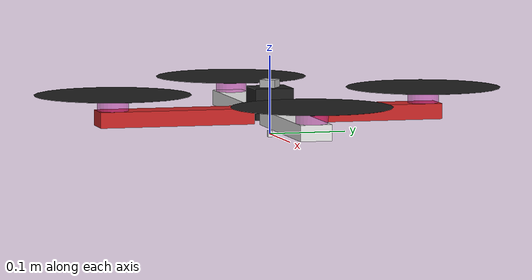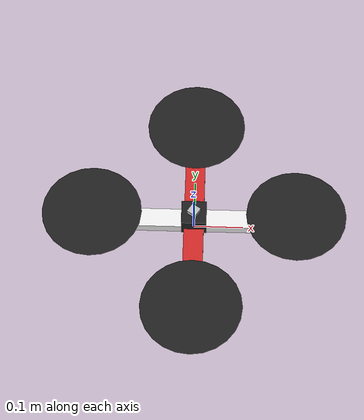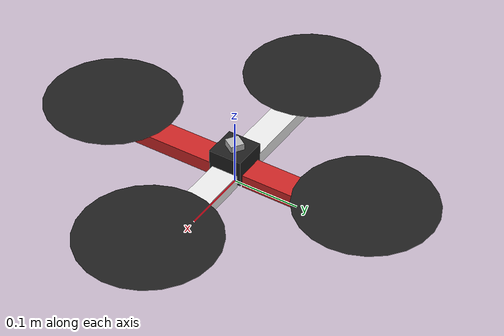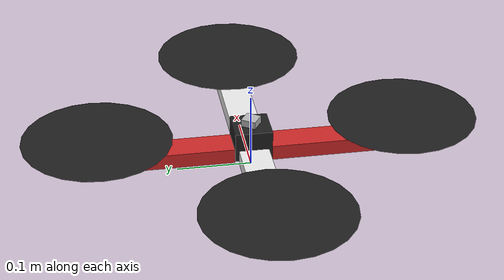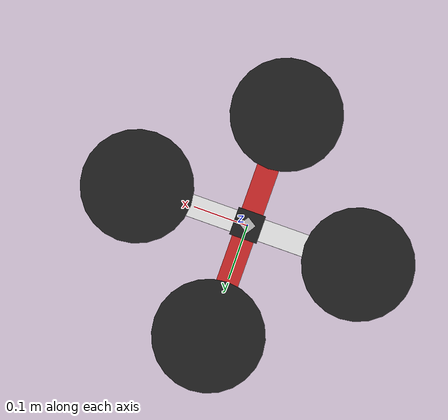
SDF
<sdf version='1.6'>
  <model name='generic_quad_sim'>
    <link name='base_link'>
      <pose frame=''>0 0 0 0 -0 0</pose>
      <inertial>
        <pose frame=''>2e-06 2e-06 0.022344 0 -0 0</pose>
        <mass>0.691</mass>
        <inertia>
          <ixx>0.00730659</ixx>
          <ixy>2.91903e-07</ixy>
          <ixz>-3.26257e-08</ixz>
          <iyy>0.00728419</iyy>
          <iyz>-3.26338e-08</iyz>
          <izz>0.0142675</izz>
        </inertia>
      </inertial>
      <collision name='base_link_fixed_joint_lump__imu_link_collision'>
        <pose frame=''>0 0 0.06 0 -0 1</pose>
        <geometry>
          <box>
            <size>0.02 0.02 0.02</size>
          </box>
        </geometry>
        <surface>
          <contact>
            <ode/>
          </contact>
          <friction>
            <ode/>
          </friction>
        </surface>
      </collision>
      <collision name='base_link_fixed_joint_lump__bottom_camera_link_collision_1'>
        <pose frame=''>0 0 0 3.14149 -0 0</pose>
        <geometry>
          <box>
            <size>0.005 0.005 0.008</size>
          </box>
        </geometry>
        <surface>
          <contact>
            <ode/>
          </contact>
          <friction>
            <ode/>
          </friction>
        </surface>
      </collision>
      <collision name='base_link_fixed_joint_lump__front_arm_collision_2'>
        <pose frame=''>0.125 0 0.025 0 -0 0</pose>
        <geometry>
          <box>
            <size>0.2 0.04 0.02</size>
          </box>
        </geometry>
        <surface>
          <contact>
            <ode/>
          </contact>
          <friction>
            <ode/>
          </friction>
        </surface>
      </collision>
      <collision name='base_link_fixed_joint_lump__front_motor_collision_3'>
        <pose frame=''>0.205 0 0.045 0 -0 0</pose>
        <geometry>
          <cylinder>
            <length>0.02</length>
            <radius>0.02</radius>
          </cylinder>
        </geometry>
        <surface>
          <contact>
            <ode/>
          </contact>
          <friction>
            <ode/>
          </friction>
        </surface>
      </collision>
      <collision name='base_link_fixed_joint_lump__left_arm_collision_4'>
        <pose frame=''>5e-06 0.125 0.025 0 -0 1.57075</pose>
        <geometry>
          <box>
            <size>0.2 0.04 0.02</size>
          </box>
        </geometry>
        <surface>
          <contact>
            <ode/>
          </contact>
          <friction>
            <ode/>
          </friction>
        </surface>
      </collision>
      <collision name='base_link_fixed_joint_lump__left_motor_collision_5'>
        <pose frame=''>9e-06 0.205 0.045 0 -0 3.14149</pose>
        <geometry>
          <cylinder>
            <length>0.02</length>
            <radius>0.02</radius>
          </cylinder>
        </geometry>
        <surface>
          <contact>
            <ode/>
          </contact>
          <friction>
            <ode/>
          </friction>
        </surface>
      </collision>
      <collision name='base_link_fixed_joint_lump__rear_arm_collision_6'>
        <pose frame=''>-0.125 1e-05 0.025 0 -0 3.14149</pose>
        <geometry>
          <box>
            <size>0.2 0.04 0.02</size>
          </box>
        </geometry>
        <surface>
          <contact>
            <ode/>
          </contact>
          <friction>
            <ode/>
          </friction>
        </surface>
      </collision>
      <collision name='base_link_fixed_joint_lump__rear_motor_collision_7'>
        <pose frame=''>-0.205 1.8e-05 0.045 0 -0 3.14149</pose>
        <geometry>
          <cylinder>
            <length>0.02</length>
            <radius>0.02</radius>
          </cylinder>
        </geometry>
        <surface>
          <contact>
            <ode/>
          </contact>
          <friction>
            <ode/>
          </friction>
        </surface>
      </collision>
      <collision name='base_link_fixed_joint_lump__right_arm_collision_8'>
        <pose frame=''>5e-06 -0.125 0.025 0 0 -1.57075</pose>
        <geometry>
          <box>
            <size>0.2 0.04 0.02</size>
          </box>
        </geometry>
        <surface>
          <contact>
            <ode/>
          </contact>
          <friction>
            <ode/>
          </friction>
        </surface>
      </collision>
      <collision name='base_link_fixed_joint_lump__right_motor_collision_9'>
        <pose frame=''>9e-06 -0.205 0.045 0 0 -3.14149</pose>
        <geometry>
          <cylinder>
            <length>0.02</length>
            <radius>0.02</radius>
          </cylinder>
        </geometry>
        <surface>
          <contact>
            <ode/>
          </contact>
          <friction>
            <ode/>
          </friction>
        </surface>
      </collision>
      <visual name='base_link_visual'>
        <pose frame=''>0 0 0.04 0 -0 0</pose>
        <geometry>
          <box>
            <size>0.05 0.05 0.04</size>
          </box>
        </geometry>
        <material>
          <script>
            <name>Gazebo/Black</name>
            <uri>file://media/materials/scripts/gazebo.material</uri>
          </script>
        </material>
      </visual>
      <visual name='base_link_fixed_joint_lump__imu_link_visual_1'>
        <pose frame=''>0 0 0.06 0 -0 1</pose>
        <geometry>
          <box>
            <size>0.02 0.02 0.02</size>
          </box>
        </geometry>
        <material>
          <script>
            <uri>__default__</uri>
            <name>__default__</name>
          </script>
        </material>
      </visual>
      <visual name='base_link_fixed_joint_lump__bottom_camera_link_visual_2'>
        <pose frame=''>0 0 0 3.14149 -0 0</pose>
        <geometry>
          <box>
            <size>0.005 0.005 0.008</size>
          </box>
        </geometry>
        <material>
          <script>
            <name>Gazebo/White</name>
            <uri>file://media/materials/scripts/gazebo.material</uri>
          </script>
        </material>
      </visual>
      <visual name='base_link_fixed_joint_lump__front_arm_visual_3'>
        <pose frame=''>0.125 0 0.025 0 -0 0</pose>
        <geometry>
          <box>
            <size>0.2 0.04 0.02</size>
          </box>
        </geometry>
        <material>
          <script>
            <name>Gazebo/White</name>
            <uri>file://media/materials/scripts/gazebo.material</uri>
          </script>
        </material>
      </visual>
      <visual name='base_link_fixed_joint_lump__front_motor_visual_4'>
        <pose frame=''>0.205 0 0.045 0 -0 0</pose>
        <geometry>
          <cylinder>
            <length>0.02</length>
            <radius>0.02</radius>
          </cylinder>
        </geometry>
        <material>
          <script>
            <name>Gazebo/DarkMagentaTransparent</name>
            <uri>file://media/materials/scripts/gazebo.material</uri>
          </script>
        </material>
      </visual>
      <visual name='base_link_fixed_joint_lump__left_arm_visual_5'>
        <pose frame=''>5e-06 0.125 0.025 0 -0 1.57075</pose>
        <geometry>
          <box>
            <size>0.2 0.04 0.02</size>
          </box>
        </geometry>
        <material>
          <script>
            <name>Gazebo/Red</name>
            <uri>file://media/materials/scripts/gazebo.material</uri>
          </script>
        </material>
      </visual>
      <visual name='base_link_fixed_joint_lump__left_motor_visual_6'>
        <pose frame=''>9e-06 0.205 0.045 0 -0 3.14149</pose>
        <geometry>
          <cylinder>
            <length>0.02</length>
            <radius>0.02</radius>
          </cylinder>
        </geometry>
        <material>
          <script>
            <name>Gazebo/DarkMagentaTransparent</name>
            <uri>file://media/materials/scripts/gazebo.material</uri>
          </script>
        </material>
      </visual>
      <visual name='base_link_fixed_joint_lump__rear_arm_visual_7'>
        <pose frame=''>-0.125 1e-05 0.025 0 -0 3.14149</pose>
        <geometry>
          <box>
            <size>0.2 0.04 0.02</size>
          </box>
        </geometry>
        <material>
          <script>
            <name>Gazebo/White</name>
            <uri>file://media/materials/scripts/gazebo.material</uri>
          </script>
        </material>
      </visual>
      <visual name='base_link_fixed_joint_lump__rear_motor_visual_8'>
        <pose frame=''>-0.205 1.8e-05 0.045 0 -0 3.14149</pose>
        <geometry>
          <cylinder>
            <length>0.02</length>
            <radius>0.02</radius>
          </cylinder>
        </geometry>
        <material>
          <script>
            <name>Gazebo/DarkMagentaTransparent</name>
            <uri>file://media/materials/scripts/gazebo.material</uri>
          </script>
        </material>
      </visual>
      <visual name='base_link_fixed_joint_lump__right_arm_visual_9'>
        <pose frame=''>5e-06 -0.125 0.025 0 0 -1.57075</pose>
        <geometry>
          <box>
            <size>0.2 0.04 0.02</size>
          </box>
        </geometry>
        <material>
          <script>
            <name>Gazebo/Red</name>
            <uri>file://media/materials/scripts/gazebo.material</uri>
          </script>
        </material>
      </visual>
      <visual name='base_link_fixed_joint_lump__right_motor_visual_10'>
        <pose frame=''>9e-06 -0.205 0.045 0 0 -3.14149</pose>
        <geometry>
          <cylinder>
            <length>0.02</length>
            <radius>0.02</radius>
          </cylinder>
        </geometry>
        <material>
          <script>
            <name>Gazebo/DarkMagentaTransparent</name>
            <uri>file://media/materials/scripts/gazebo.material</uri>
          </script>
        </material>
      </visual>
      <velocity_decay/>
      <pose frame=''>0 0 0.02 0 -0 0</pose>
      <velocity_decay/>
      <sensor name='imu_sensor' type='imu'>
        <always_on>1</always_on>
        <update_rate>1000</update_rate>
        <visualize>1</visualize>
        <topic>__default_topic__</topic>
        <plugin name='imu_plugin' filename='libgazebo_ros_imu_sensor.so'>
          <topicName>imu_data</topicName>
          <bodyName>imu_link</bodyName>
          <updateRateHZ>10.0</updateRateHZ>
          <gaussianNoise>0.0</gaussianNoise>
          <xyzOffset>0 0 0</xyzOffset>
          <rpyOffset>0 0 0</rpyOffset>
        </plugin>
        <pose frame=''>0 0 0.04 0 -0 1</pose>
      </sensor>
      <velocity_decay/>
      <pose frame=''>0 0 0 3.14149 -0 0</pose>
      <sensor name='camera' type='bottomcamera'>
        <update_rate>30</update_rate>
        <visualize>1</visualize>
        <camera name='bottom_camera'>
          <horizontal_fov>1.39626</horizontal_fov>
          <image>
            <width>640</width>
            <height>480</height>
            <format>R8G8B8</format>
          </image>
          <clip>
            <near>0.1</near>
            <far>500</far>
          </clip>
          <noise>
            <type>gaussian</type>
            <mean>0</mean>
            <stddev>0.07</stddev>
          </noise>
        </camera>
        <plugin name='bottom_camera_controller' filename='libgazebo_ros_camera.so'>
          <always_on>1</always_on>
          <visualize>true</visualize>
          <update_rate>30.0</update_rate>
          <imageTopicName>bottom_camera_image_raw</imageTopicName>
          <frameName>bottom_camera_link</frameName>
          <hackBaseline>0.07</hackBaseline>
          <distortionK1>0.0</distortionK1>
          <distortionK2>0.0</distortionK2>
          <distortionK3>0.0</distortionK3>
          <distortionT1>0.0</distortionT1>
          <distortionT2>0.0</distortionT2>
        </plugin>
        <pose frame=''>0 0 0 3.14149 -0 0</pose>
      </sensor>
      <velocity_decay/>
      <velocity_decay/>
      <velocity_decay/>
      <velocity_decay/>
      <velocity_decay/>
      <velocity_decay/>
      <gravity>1</gravity>
      <velocity_decay/>
      <gravity>1</gravity>
      <velocity_decay/>
      <self_collide>0</self_collide>
    </link>
    <link name='front_rotor'>
      <pose frame=''>0.205 0 0.055 0 -0 0</pose>
      <inertial>
        <pose frame=''>0 0 0 0 -0 0</pose>
        <mass>0.001</mass>
        <inertia>
          <ixx>5e-07</ixx>
          <ixy>0</ixy>
          <ixz>0</ixz>
          <iyy>5e-07</iyy>
          <iyz>0</iyz>
          <izz>1e-06</izz>
        </inertia>
      </inertial>
      <collision name='front_rotor_collision'>
        <pose frame=''>0 0 0 0 -0 0</pose>
        <geometry>
          <cylinder>
            <length>0.0002</length>
            <radius>0.1</radius>
          </cylinder>
        </geometry>
        <surface>
          <contact>
            <ode/>
          </contact>
          <friction>
            <ode/>
          </friction>
        </surface>
      </collision>
      <visual name='front_rotor_visual'>
        <pose frame=''>0 0 0 0 -0 0</pose>
        <geometry>
          <cylinder>
            <length>0.0002</length>
            <radius>0.1</radius>
          </cylinder>
        </geometry>
        <material>
          <script>
            <name>Gazebo/Black</name>
            <uri>file://media/materials/scripts/gazebo.material</uri>
          </script>
        </material>
      </visual>
      <gravity>1</gravity>
      <velocity_decay/>
      <self_collide>0</self_collide>
    </link>
    <joint name='front_motor_to_front_rotor' type='revolute'>
      <child>front_rotor</child>
      <parent>base_link</parent>
      <axis>
        <xyz>0 0 1</xyz>
        <limit>
          <lower>-1e+16</lower>
          <upper>1e+16</upper>
        </limit>
        <dynamics>
          <spring_reference>0</spring_reference>
          <spring_stiffness>0</spring_stiffness>
        </dynamics>
        <use_parent_model_frame>1</use_parent_model_frame>
      </axis>
    </joint>
    <link name='left_rotor'>
      <pose frame=''>9e-06 0.205 0.055 0 -0 3.14149</pose>
      <inertial>
        <pose frame=''>0 0 0 0 -0 0</pose>
        <mass>0.001</mass>
        <inertia>
          <ixx>5e-07</ixx>
          <ixy>0</ixy>
          <ixz>0</ixz>
          <iyy>5e-07</iyy>
          <iyz>0</iyz>
          <izz>1e-06</izz>
        </inertia>
      </inertial>
      <collision name='left_rotor_collision'>
        <pose frame=''>0 0 0 0 -0 0</pose>
        <geometry>
          <cylinder>
            <length>0.0002</length>
            <radius>0.1</radius>
          </cylinder>
        </geometry>
        <surface>
          <contact>
            <ode/>
          </contact>
          <friction>
            <ode/>
          </friction>
        </surface>
      </collision>
      <visual name='left_rotor_visual'>
        <pose frame=''>0 0 0 0 -0 0</pose>
        <geometry>
          <cylinder>
            <length>0.0002</length>
            <radius>0.1</radius>
          </cylinder>
        </geometry>
        <material>
          <script>
            <name>Gazebo/Black</name>
            <uri>file://media/materials/scripts/gazebo.material</uri>
          </script>
        </material>
      </visual>
      <gravity>1</gravity>
      <velocity_decay/>
      <self_collide>0</self_collide>
    </link>
    <joint name='left_motor_to_left_rotor' type='revolute'>
      <child>left_rotor</child>
      <parent>base_link</parent>
      <axis>
        <xyz>0 0 1</xyz>
        <limit>
          <lower>-1e+16</lower>
          <upper>1e+16</upper>
        </limit>
        <dynamics>
          <spring_reference>0</spring_reference>
          <spring_stiffness>0</spring_stiffness>
        </dynamics>
        <use_parent_model_frame>1</use_parent_model_frame>
      </axis>
    </joint>
    <link name='rear_rotor'>
      <pose frame=''>-0.205 1.8e-05 0.055 0 -0 3.14149</pose>
      <inertial>
        <pose frame=''>0 0 0 0 -0 0</pose>
        <mass>0.001</mass>
        <inertia>
          <ixx>5e-07</ixx>
          <ixy>0</ixy>
          <ixz>0</ixz>
          <iyy>5e-07</iyy>
          <iyz>0</iyz>
          <izz>1e-06</izz>
        </inertia>
      </inertial>
      <collision name='rear_rotor_collision'>
        <pose frame=''>0 0 0 0 -0 0</pose>
        <geometry>
          <cylinder>
            <length>0.0002</length>
            <radius>0.1</radius>
          </cylinder>
        </geometry>
        <surface>
          <contact>
            <ode/>
          </contact>
          <friction>
            <ode/>
          </friction>
        </surface>
      </collision>
      <visual name='rear_rotor_visual'>
        <pose frame=''>0 0 0 0 -0 0</pose>
        <geometry>
          <cylinder>
            <length>0.0002</length>
            <radius>0.1</radius>
          </cylinder>
        </geometry>
        <material>
          <script>
            <name>Gazebo/Black</name>
            <uri>file://media/materials/scripts/gazebo.material</uri>
          </script>
        </material>
      </visual>
      <gravity>1</gravity>
      <velocity_decay/>
      <self_collide>0</self_collide>
    </link>
    <joint name='rear_motor_to_rear_rotor' type='revolute'>
      <child>rear_rotor</child>
      <parent>base_link</parent>
      <axis>
        <xyz>0 0 1</xyz>
        <limit>
          <lower>-1e+16</lower>
          <upper>1e+16</upper>
        </limit>
        <dynamics>
          <spring_reference>0</spring_reference>
          <spring_stiffness>0</spring_stiffness>
        </dynamics>
        <use_parent_model_frame>1</use_parent_model_frame>
      </axis>
    </joint>
    <link name='right_rotor'>
      <pose frame=''>9e-06 -0.205 0.055 0 0 -3.14149</pose>
      <inertial>
        <pose frame=''>0 0 0 0 -0 0</pose>
        <mass>0.001</mass>
        <inertia>
          <ixx>5e-07</ixx>
          <ixy>0</ixy>
          <ixz>0</ixz>
          <iyy>5e-07</iyy>
          <iyz>0</iyz>
          <izz>1e-06</izz>
        </inertia>
      </inertial>
      <collision name='right_rotor_collision'>
        <pose frame=''>0 0 0 0 -0 0</pose>
        <geometry>
          <cylinder>
            <length>0.0002</length>
            <radius>0.1</radius>
          </cylinder>
        </geometry>
        <surface>
          <contact>
            <ode/>
          </contact>
          <friction>
            <ode/>
          </friction>
        </surface>
      </collision>
      <visual name='right_rotor_visual'>
        <pose frame=''>0 0 0 0 -0 0</pose>
        <geometry>
          <cylinder>
            <length>0.0002</length>
            <radius>0.1</radius>
          </cylinder>
        </geometry>
        <material>
          <script>
            <name>Gazebo/Black</name>
            <uri>file://media/materials/scripts/gazebo.material</uri>
          </script>
        </material>
      </visual>
      <gravity>1</gravity>
      <velocity_decay/>
      <self_collide>0</self_collide>
    </link>
    <joint name='right_motor_to_right_rotor' type='revolute'>
      <child>right_rotor</child>
      <parent>base_link</parent>
      <axis>
        <xyz>0 0 1</xyz>
        <limit>
          <lower>-1e+16</lower>
          <upper>1e+16</upper>
        </limit>
        <dynamics>
          <spring_reference>0</spring_reference>
          <spring_stiffness>0</spring_stiffness>
        </dynamics>
        <use_parent_model_frame>1</use_parent_model_frame>
      </axis>
    </joint>
  </model>
</sdf>
